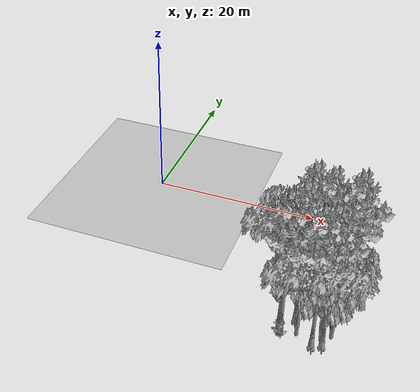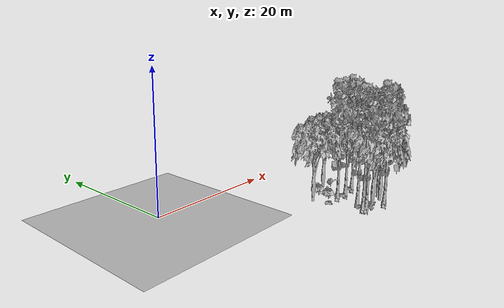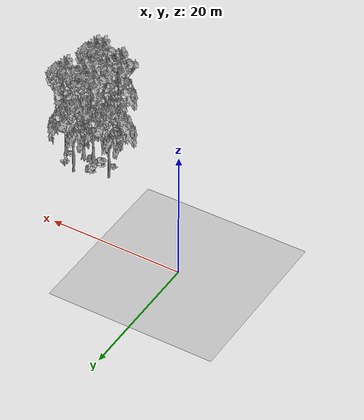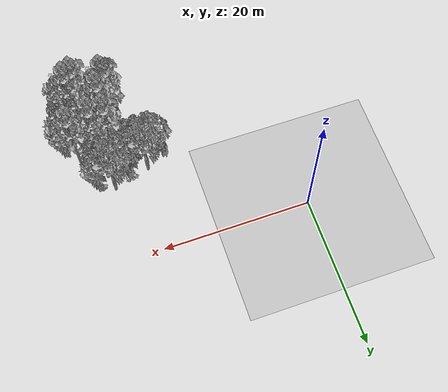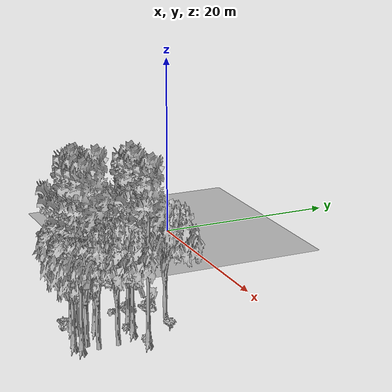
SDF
<sdf version="1.7">
 <world name="default">
  <model name="ground_plane">
   <static>1</static>
   <link name="link">
    <collision name="collision">
     <pose>-50 0 0 0 -0 0</pose>
     <geometry><plane><normal>0 0 1</normal><size>80 80</size></plane></geometry>
     <surface><contact><ode><min_depth>0.01</min_depth><max_vel>0</max_vel></ode></contact></surface>
    </collision>
    <visual name="grass">
     <cast_shadows>0</cast_shadows>
     <geometry>
      <mesh>
       <scale>0.46714285714285714 0.46714285714285714 0.1</scale>
       <uri>file://grass_plane/meshes/grass_plane.dae</uri>
      </mesh>
     </geometry>
    </visual>
   </link>
  </model>
  <model name="Tree 6">
   <static>1</static>
   <pose>24.662578489333356 -19.806270252675482 0 1.57079 -0 0</pose>
   <link name="link">
    <collision name="collision">
     <geometry><mesh><scale>3.5 5 3.5</scale><uri>model://tree_9/meshes/tree_9.obj</uri></mesh></geometry>
    </collision>
    <visual name="visual">
     <geometry><mesh><scale>3.5 5 3.5</scale><uri>model://tree_9/meshes/tree_9.obj</uri></mesh></geometry>
    </visual>
   </link>
  </model>
  <model name="Tree 132">
   <static>1</static>
   <pose>24.146207486964215 -13.933108595228934 0 1.57079 -0 0</pose>
   <link name="link">
    <collision name="collision">
     <geometry><mesh><scale>3.5 5 3.5</scale><uri>model://tree_9/meshes/tree_9.obj</uri></mesh></geometry>
    </collision>
    <visual name="visual">
     <geometry><mesh><scale>3.5 5 3.5</scale><uri>model://tree_9/meshes/tree_9.obj</uri></mesh></geometry>
    </visual>
   </link>
  </model>
  <model name="Tree 209">
   <static>1</static>
   <pose>22.797768397100988 -18.897088313031418 0 1.57079 -0 0</pose>
   <link name="link">
    <collision name="collision">
     <geometry><mesh><scale>3.5 5 3.5</scale><uri>model://tree_2/meshes/tree_2.obj</uri></mesh></geometry>
    </collision>
    <visual name="visual">
     <geometry><mesh><scale>3.5 5 3.5</scale><uri>model://tree_2/meshes/tree_2.obj</uri></mesh></geometry>
    </visual>
   </link>
  </model>
  <model name="Tree 243">
   <static>1</static>
   <pose>20.926766453494096 -18.513644200794257 0 1.57079 -0 0</pose>
   <link name="link">
    <collision name="collision">
     <geometry><mesh><scale>3.5 5 3.5</scale><uri>model://tree_9/meshes/tree_9.obj</uri></mesh></geometry>
    </collision>
    <visual name="visual">
     <geometry><mesh><scale>3.5 5 3.5</scale><uri>model://tree_9/meshes/tree_9.obj</uri></mesh></geometry>
    </visual>
   </link>
  </model>
  <model name="Tree 263">
   <static>1</static>
   <pose>18.527349290742272 -11.910999155419564 0 1.57079 -0 0</pose>
   <link name="link">
    <collision name="collision">
     <geometry><mesh><scale>3.5 5 3.5</scale><uri>model://tree_2/meshes/tree_2.obj</uri></mesh></geometry>
    </collision>
    <visual name="visual">
     <geometry><mesh><scale>3.5 5 3.5</scale><uri>model://tree_2/meshes/tree_2.obj</uri></mesh></geometry>
    </visual>
   </link>
  </model>
  <model name="Tree 297">
   <static>1</static>
   <pose>22.270481687645294 -16.93337688806178 0 1.57079 -0 0</pose>
   <link name="link">
    <collision name="collision">
     <geometry><mesh><scale>3.5 5 3.5</scale><uri>model://tree_9/meshes/tree_9.obj</uri></mesh></geometry>
    </collision>
    <visual name="visual">
     <geometry><mesh><scale>3.5 5 3.5</scale><uri>model://tree_9/meshes/tree_9.obj</uri></mesh></geometry>
    </visual>
   </link>
  </model>
  <model name="Tree 370">
   <static>1</static>
   <pose>26.79926355885371 -13.485029158955342 0 1.57079 -0 0</pose>
   <link name="link">
    <collision name="collision">
     <geometry><mesh><scale>3.5 5 3.5</scale><uri>model://tree_9/meshes/tree_9.obj</uri></mesh></geometry>
    </collision>
    <visual name="visual">
     <geometry><mesh><scale>3.5 5 3.5</scale><uri>model://tree_9/meshes/tree_9.obj</uri></mesh></geometry>
    </visual>
   </link>
  </model>
  <model name="Tree 418">
   <static>1</static>
   <pose>25.27685025617197 -18.791909785774052 0 1.57079 -0 0</pose>
   <link name="link">
    <collision name="collision">
     <geometry><mesh><scale>3.5 5 3.5</scale><uri>model://tree_2/meshes/tree_2.obj</uri></mesh></geometry>
    </collision>
    <visual name="visual">
     <geometry><mesh><scale>3.5 5 3.5</scale><uri>model://tree_2/meshes/tree_2.obj</uri></mesh></geometry>
    </visual>
   </link>
  </model>
  <model name="Tree 441">
   <static>1</static>
   <pose>26.10525139641419 -16.149424746994086 0 1.57079 -0 0</pose>
   <link name="link">
    <collision name="collision">
     <geometry><mesh><scale>3.5 5 3.5</scale><uri>model://tree_2/meshes/tree_2.obj</uri></mesh></geometry>
    </collision>
    <visual name="visual">
     <geometry><mesh><scale>3.5 5 3.5</scale><uri>model://tree_2/meshes/tree_2.obj</uri></mesh></geometry>
    </visual>
   </link>
  </model>
  <model name="Tree 481">
   <static>1</static>
   <pose>25.64954983980428 -19.37680099971164 0 1.57079 -0 0</pose>
   <link name="link">
    <collision name="collision">
     <geometry><mesh><scale>3.5 5 3.5</scale><uri>model://tree_9/meshes/tree_9.obj</uri></mesh></geometry>
    </collision>
    <visual name="visual">
     <geometry><mesh><scale>3.5 5 3.5</scale><uri>model://tree_9/meshes/tree_9.obj</uri></mesh></geometry>
    </visual>
   </link>
  </model>
  <model name="Tree 545">
   <static>1</static>
   <pose>22.34947205235727 -13.673853126891693 0 1.57079 -0 0</pose>
   <link name="link">
    <collision name="collision">
     <geometry><mesh><scale>3.5 5 3.5</scale><uri>model://tree_9/meshes/tree_9.obj</uri></mesh></geometry>
    </collision>
    <visual name="visual">
     <geometry><mesh><scale>3.5 5 3.5</scale><uri>model://tree_9/meshes/tree_9.obj</uri></mesh></geometry>
    </visual>
   </link>
  </model>
  <model name="Tree 584">
   <static>1</static>
   <pose>21.21430389027786 -18.853833261343382 0 1.57079 -0 0</pose>
   <link name="link">
    <collision name="collision">
     <geometry><mesh><scale>3.5 5 3.5</scale><uri>model://tree_9/meshes/tree_9.obj</uri></mesh></geometry>
    </collision>
    <visual name="visual">
     <geometry><mesh><scale>3.5 5 3.5</scale><uri>model://tree_9/meshes/tree_9.obj</uri></mesh></geometry>
    </visual>
   </link>
  </model>
  <model name="Tree 599">
   <static>1</static>
   <pose>23.455679078564202 -10.425612908794434 0 1.57079 -0 0</pose>
   <link name="link">
    <collision name="collision">
     <geometry><mesh><scale>3.5 5 3.5</scale><uri>model://tree_2/meshes/tree_2.obj</uri></mesh></geometry>
    </collision>
    <visual name="visual">
     <geometry><mesh><scale>3.5 5 3.5</scale><uri>model://tree_2/meshes/tree_2.obj</uri></mesh></geometry>
    </visual>
   </link>
  </model>
  <model name="Tree 617">
   <static>1</static>
   <pose>26.185226596592386 -18.026624412598913 0 1.57079 -0 0</pose>
   <link name="link">
    <collision name="collision">
     <geometry><mesh><scale>3.5 5 3.5</scale><uri>model://tree_2/meshes/tree_2.obj</uri></mesh></geometry>
    </collision>
    <visual name="visual">
     <geometry><mesh><scale>3.5 5 3.5</scale><uri>model://tree_2/meshes/tree_2.obj</uri></mesh></geometry>
    </visual>
   </link>
  </model>
  <model name="Bush 4">
   <static>1</static>
   <pose>19.260082630235416 -14.10140787325566 0 1.57079 -0 0</pose>
   <link name="link">
    <collision name="collision">
     <geometry><mesh><scale>2 2 2</scale><uri>model://bush_2/meshes/bush_2.obj</uri></mesh></geometry>
     <surface><contact><collide_without_contact>false</collide_without_contact></contact></surface>
    </collision>
    <visual name="visual">
     <geometry><mesh><scale>2 2 2</scale><uri>model://bush_2/meshes/bush_2.obj</uri></mesh></geometry>
    </visual>
   </link>
  </model>
  <model name="Bush 36">
   <static>1</static>
   <pose>21.10375912966147 -11.333066858051637 0 1.57079 -0 0</pose>
   <link name="link">
    <collision name="collision">
     <geometry><mesh><scale>2 2 2</scale><uri>model://bush_1/meshes/bush_1.obj</uri></mesh></geometry>
     <surface><contact><collide_without_contact>false</collide_without_contact></contact></surface>
    </collision>
    <visual name="visual">
     <geometry><mesh><scale>2 2 2</scale><uri>model://bush_1/meshes/bush_1.obj</uri></mesh></geometry>
    </visual>
   </link>
  </model>
  <model name="Bush 179">
   <static>1</static>
   <pose>20.70012228900835 -13.201967927590637 0 1.57079 -0 0</pose>
   <link name="link">
    <collision name="collision">
     <geometry><mesh><scale>2 2 2</scale><uri>model://bush_1/meshes/bush_1.obj</uri></mesh></geometry>
     <surface><contact><collide_without_contact>false</collide_without_contact></contact></surface>
    </collision>
    <visual name="visual">
     <geometry><mesh><scale>2 2 2</scale><uri>model://bush_1/meshes/bush_1.obj</uri></mesh></geometry>
    </visual>
   </link>
  </model>
  <model name="Bush 297">
   <static>1</static>
   <pose>25.28384889450335 -10.720475140105165 0 1.57079 -0 0</pose>
   <link name="link">
    <collision name="collision">
     <geometry><mesh><scale>2 2 2</scale><uri>model://bush_0/meshes/bush_0.obj</uri></mesh></geometry>
     <surface><contact><collide_without_contact>false</collide_without_contact></contact></surface>
    </collision>
    <visual name="visual">
     <geometry><mesh><scale>2 2 2</scale><uri>model://bush_0/meshes/bush_0.obj</uri></mesh></geometry>
    </visual>
   </link>
  </model>
  <model name="Bush 309">
   <static>1</static>
   <pose>23.07049468364889 -14.117308049265791 0 1.57079 -0 0</pose>
   <link name="link">
    <collision name="collision">
     <geometry><mesh><scale>2 2 2</scale><uri>model://bush_2/meshes/bush_2.obj</uri></mesh></geometry>
     <surface><contact><collide_without_contact>false</collide_without_contact></contact></surface>
    </collision>
    <visual name="visual">
     <geometry><mesh><scale>2 2 2</scale><uri>model://bush_2/meshes/bush_2.obj</uri></mesh></geometry>
    </visual>
   </link>
  </model>
  <model name="Bush 392">
   <static>1</static>
   <pose>21.177037549949354 -19.687536109640096 0 1.57079 -0 0</pose>
   <link name="link">
    <collision name="collision">
     <geometry><mesh><scale>2 2 2</scale><uri>model://bush_4/meshes/bush_4.obj</uri></mesh></geometry>
     <surface><contact><collide_without_contact>false</collide_without_contact></contact></surface>
    </collision>
    <visual name="visual">
     <geometry><mesh><scale>2 2 2</scale><uri>model://bush_4/meshes/bush_4.obj</uri></mesh></geometry>
    </visual>
   </link>
  </model>
  <model name="Bush 416">
   <static>1</static>
   <pose>20.879744602323832 -18.090111895109324 0 1.57079 -0 0</pose>
   <link name="link">
    <collision name="collision">
     <geometry><mesh><scale>2 2 2</scale><uri>model://bush_2/meshes/bush_2.obj</uri></mesh></geometry>
     <surface><contact><collide_without_contact>false</collide_without_contact></contact></surface>
    </collision>
    <visual name="visual">
     <geometry><mesh><scale>2 2 2</scale><uri>model://bush_2/meshes/bush_2.obj</uri></mesh></geometry>
    </visual>
   </link>
  </model>
  <model name="Bush 475">
   <static>1</static>
   <pose>26.05282087025806 -13.388025226999396 0 1.57079 -0 0</pose>
   <link name="link">
    <collision name="collision">
     <geometry><mesh><scale>2 2 2</scale><uri>model://bush_2/meshes/bush_2.obj</uri></mesh></geometry>
     <surface><contact><collide_without_contact>false</collide_without_contact></contact></surface>
    </collision>
    <visual name="visual">
     <geometry><mesh><scale>2 2 2</scale><uri>model://bush_2/meshes/bush_2.obj</uri></mesh></geometry>
    </visual>
   </link>
  </model>
  <model name="Bush 503">
   <static>1</static>
   <pose>22.72921523802949 -13.536130913702422 0 1.57079 -0 0</pose>
   <link name="link">
    <collision name="collision">
     <geometry><mesh><scale>2 2 2</scale><uri>model://bush_2/meshes/bush_2.obj</uri></mesh></geometry>
     <surface><contact><collide_without_contact>false</collide_without_contact></contact></surface>
    </collision>
    <visual name="visual">
     <geometry><mesh><scale>2 2 2</scale><uri>model://bush_2/meshes/bush_2.obj</uri></mesh></geometry>
    </visual>
   </link>
  </model>
 </world>
</sdf>
